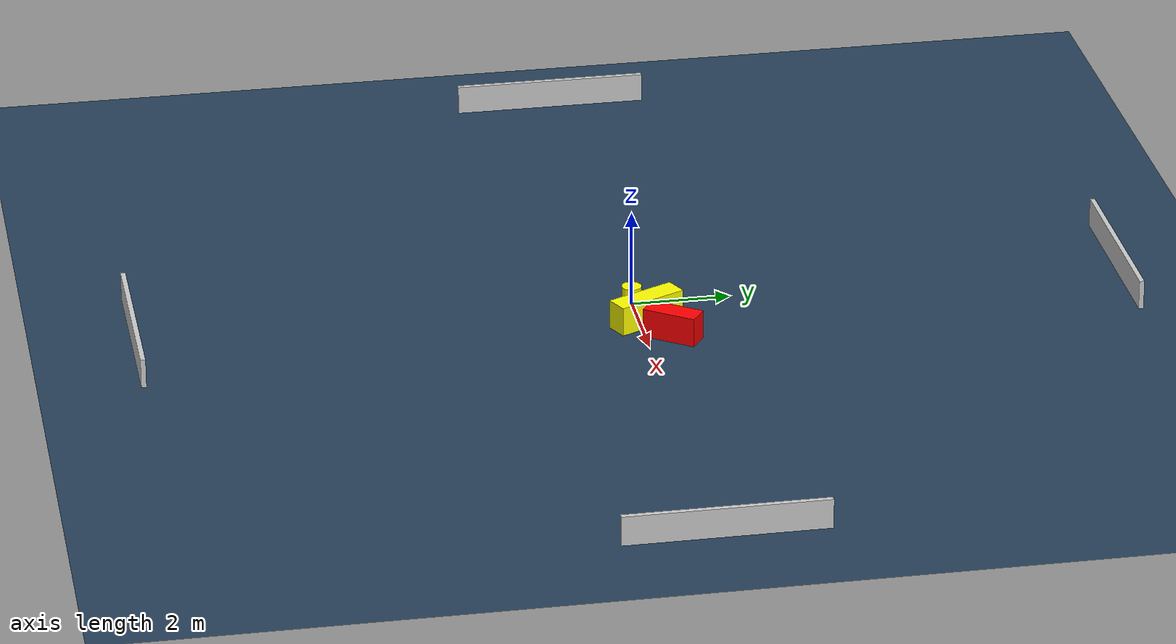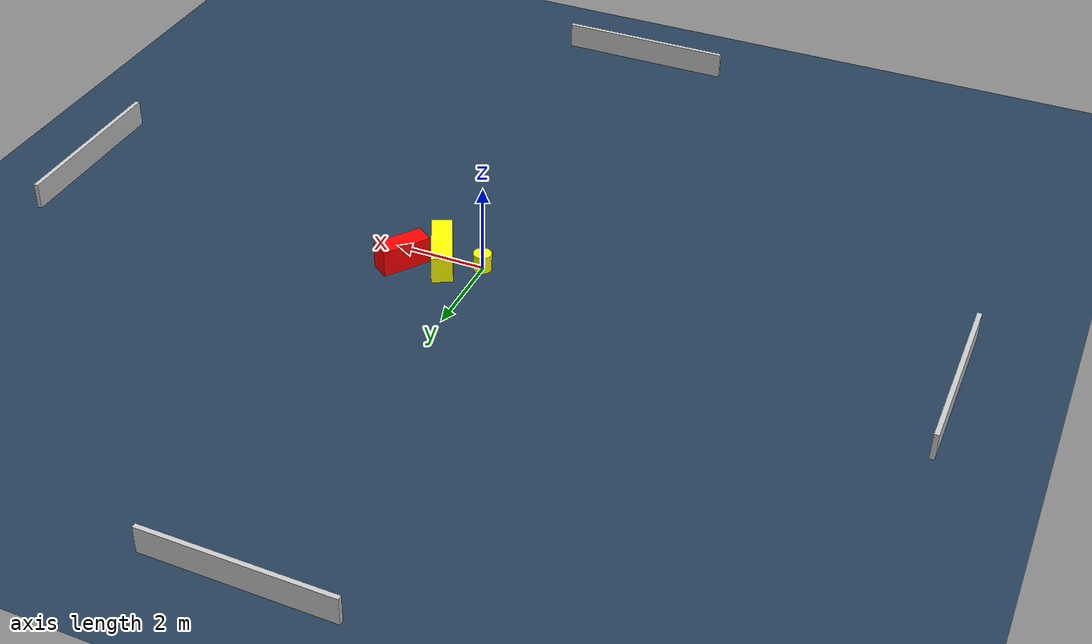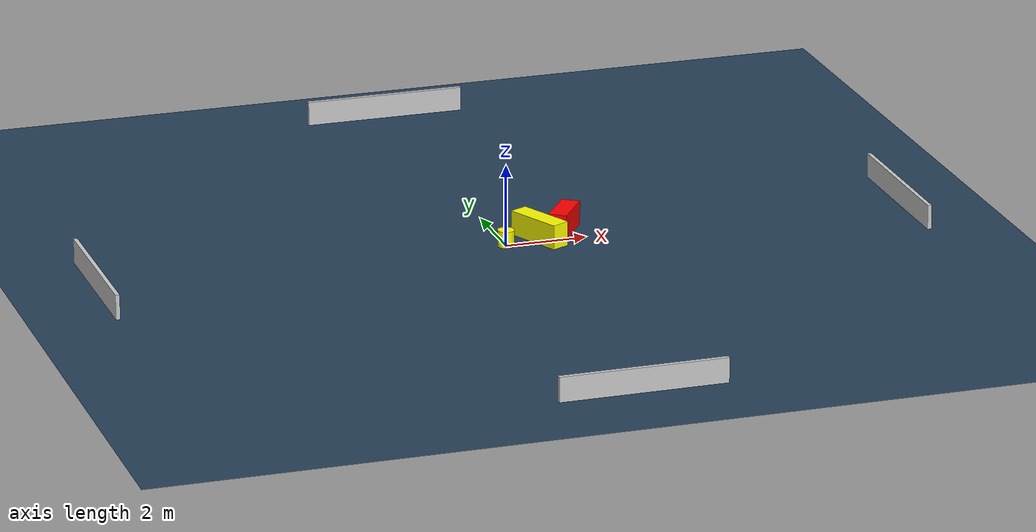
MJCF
<?xml version="1.0" ?>
<mujoco model="generated_environment">
  <option timestep="0.01" integrator="RK4" cone="elliptic"/>
  <default>
    <geom density="1"/>
  </default>
  <asset>
    <texture builtin="gradient" height="3072" name="skybox" rgb1="0.3 0.5 0.7" rgb2="0 0 0" type="skybox" width="512"/>
    <texture builtin="checker" height="300" name="groundplane" rgb1="0.2 0.3 0.4" rgb2="0.1 0.2 0.3" type="2d" width="300"/>
    <material name="groundplane" reflectance="0.2" texrepeat="5 5" texture="groundplane"/>
  </asset>
  <worldbody>
    <light dir="0 0 -1" directional="true" pos="0 0 1.5"/>
    <geom condim="3" friction="0.5 0.005 0.001" material="groundplane" name="floor" pos="0 0 0" size="0 0 0.05" type="plane"/>
    <body name="walls">
      <geom name="wall_1" condim="4" pos="-10.0 0.0 0.3" rgba="0.800000011920929 0.800000011920929 0.800000011920929 1.0" size="0.05 2.0 0.3" type="box"/>
      <geom name="wall_2" condim="4" pos="10.0 0.0 0.3" rgba="0.800000011920929 0.800000011920929 0.800000011920929 1.0" size="0.05 2.0 0.3" type="box"/>
      <geom name="wall_3" condim="4" pos="0.0 -10.0 0.3" rgba="0.800000011920929 0.800000011920929 0.800000011920929 1.0" size="2.0 0.05 0.3" type="box"/>
      <geom name="wall_4" condim="4" pos="0.0 10.0 0.3" rgba="0.800000011920929 0.800000011920929 0.800000011920929 1.0" size="2.0 0.05 0.3" type="box"/>
    </body>
    <body name="robot">
      <joint name="joint_x" type="slide" pos="0 0 0" axis="1 0 0"/>
      <joint name="joint_y" type="slide" pos="0 0 0" axis="0 1 0"/>
      <geom name="robot" type="cylinder" pos="0.0 0.0 0.2" size="0.2 0.2 0.0" mass="5.0" friction="1.0 0.005 0.0001" condim="4" rgba="1.0 1.0 0.0 1.0"/>
    </body>
    <body name="obstacle_1_movable">
      <geom name="obstacle_1_movable" condim="4" pos="0.8853420223371798 0.14035437418030008 0.3" euler="0 0 115.32347827552694" friction="0.0 0.005 0.001" rgba="1.0 1.0 0.0 1.0" size="0.732412791814282 0.2283678555549558 0.3" type="box" mass="0.1"/>
      <joint type="free"/>
    </body>
    <body name="obstacle_2_static">
      <geom name="obstacle_2_static" condim="4" pos="1.633607699584814 0.5426812317013935 0.3" euler="0 0 234.8592953919354" friction="0.0 0.005 0.001" rgba="1.0 0.0 0.0 1.0" size="0.5535570357052735 0.22499600992484103 0.3" type="box"/>
    </body>
  </worldbody>
  <actuator>
    <motor name="actuator_x" joint="joint_x" gear="1" ctrlrange="-1 1"/>
    <motor name="actuator_y" joint="joint_y" gear="1" ctrlrange="-1 1"/>
  </actuator>
</mujoco>
